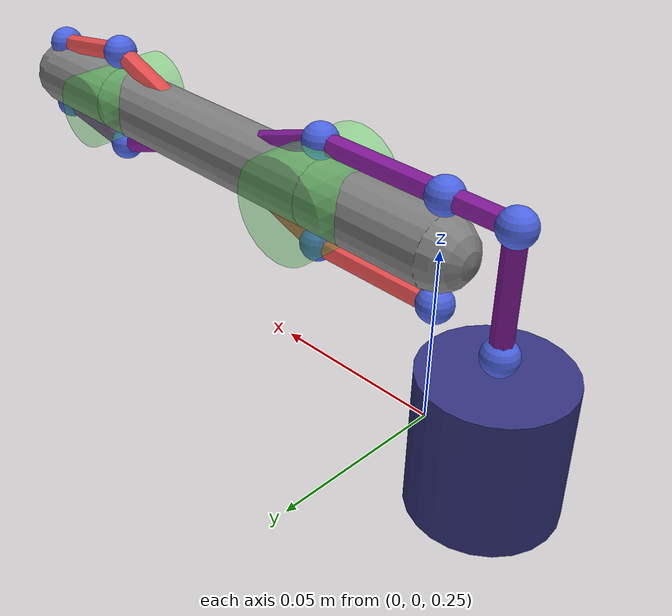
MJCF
<mujoco>

    <default>
        <joint axis="1 0 1" range="0 60" limited="true"/>
        <geom type="capsule" size=".01" />
        <site rgba=".3 .4 .9 1"/>
        <default class="visual_cylinder">
            <geom type="cylinder" fromto="0 .015 0 0 -.015 0" size=".02" rgba=".3 .9 .3 .4"/>
          </default>
      </default>

    <worldbody>
        <body name="weight" pos="-0.02 0 .255">
            <joint   type="slide"/>
            <geom type="cylinder" size=".02 .02" density="5000" rgba=".2 .2 .5 1"/>
            <site name="s0" pos="0 0 .025"/>
          </body>
        <body pos="0 0 .3">
        <site name="sk" pos="-0.02 0 .015"/>

        <geom  name ="b1" fromto="0 0 0 .04 0 0" />
        <site name="s1" pos="0 0 0.015"/>
        <site name="s2" pos="0 0 -0.015"/>
        <body pos ="0.04 0 0">
             <geom name ="b2" class ="visual_cylinder" size=".015"/>
             <site name="s3" pos="0 0 0.015"/>
            <site name="s4" pos="0 0 -0.015"/>
            <body pos ="0 0 0">

                <geom  name ="b3" fromto="0 0 0 .084 0 0" />
                <body pos ="0.084 0 0" name = "body2">

                    <geom name ="b4" class ="visual_cylinder" size=".011"/>
                    <site name="s5" pos="0 0 0.015"/>
                    <site name="s6" pos="0 0 -0.015"/>

                    <body pos ="0 0 0">
                        <geom  name ="b5" fromto="0 0 0 .029 0 0" />
                        <site name="s7" pos="0.029 0 0.01"/>
                        <site name="s8" pos="0.029 0 -0.01"/>
                    </body>
                </body>
            </body>
            </body>

        </body>

        </worldbody>
     <tendon>
            <spatial stiffness="6" rgba=".51 .1 .6 1">
                <site site="s0"/>
                <site site="sk"/>
                <site site="s1"/>
                <site site="s3"/>
                <site site="s6"/>
                <site site="s8"/>

                </spatial>

                <spatial stiffness="10" rgba=".9 .3 .3 1">
                    <site site="s2"/>
                    <site site="s4"/>
                    <site site="s5"/>
                    <site site="s7"/>

                    </spatial>
        </tendon>

  </mujoco>
